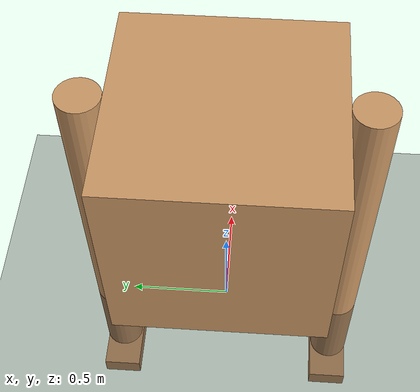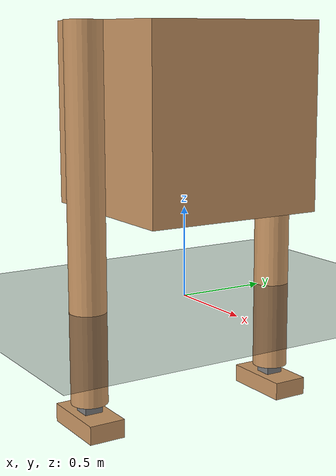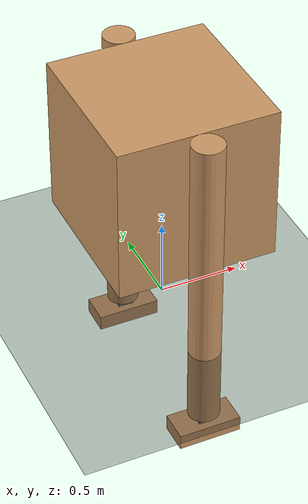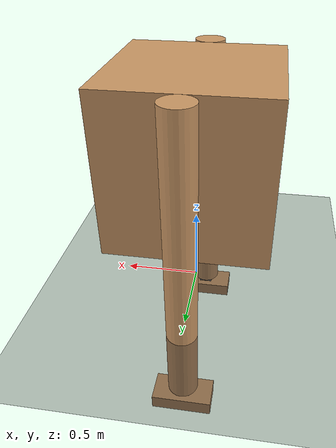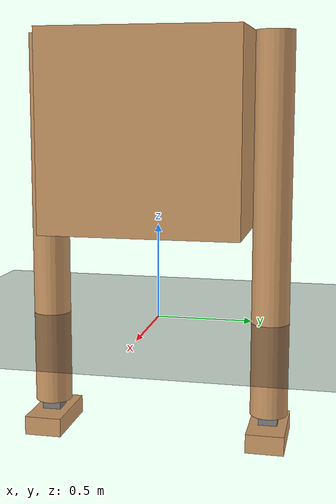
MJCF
<mujoco model="ed_209 scene">

  <include file="ed_209.xml"/>

  <statistic center="0 0 .75" extent="1.2" meansize="0.05"/>

  <visual>
    <headlight diffuse="0.6 0.6 0.6" ambient="0.3 0.3 0.3" specular="0 0 0"/>
    <rgba haze="0.15 0.25 0.35 1"/>
    <global azimuth="-120" elevation="-20"/>
  </visual>

  <asset>
    <material name="floor" rgba=".1 .1 .1 1" reflectance="0.1"/>
  </asset>

  <worldbody>
    <light pos="0 0 1.5" dir="0 0 -1" directional="true"/>
    <geom name="floor" size="0 0 0.05" type="plane" material="floor"/>
  </worldbody>

</mujoco>

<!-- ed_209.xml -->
<mujoco model="ed_209">
  <default class="lift">
    <joint type="slide" axis="0 0 1" damping="5" range="-0.5 .6"/>
    <general ctrlrange="-0.5 .6" gainprm="300" biasprm="0 -300 -50" forcerange="-56 56"/>
  </default>
  <worldbody>
    <!-- Torso -->
    <body name="torso" pos="0 0 1">
      <freejoint/>
      <geom type="box" size="0.5 0.5 0.5" rgba="0.8 0.6 0.4 1"/>
        <!-- Leg -->
      <body name="rleg" pos="0 -0.6 -0.5">
        <joint name="rleg_slide" type="slide" axis="0 0 1" pos="0 0 0"/>
        <geom type="cylinder" size="0.1 1" rgba="0.8 0.6 0.4 1"/>
        <!-- Slide joint connecting torso to leg -->
        <!-- Foot -->
        <body name="rankle" pos="0 0 -1">
          <geom type="box" size="0.05 0.05 0.05"/>
          <body name="rfoot" pos="0 0 -0.1">
            <joint name="rpitch" type="hinge" axis="1 0 0" pos="0 0 0"/>
            <joint name="rroll" type="hinge" axis="0 1 0" pos="0 0 0"/>
            <geom type="box" size="0.2 0.1 0.05" rgba="0.8 0.6 0.4 1"/>
          </body>
        </body>
      </body>
      <body name="lleg" pos="0 +0.6 -0.5">
        <joint name="lleg_slide" type="slide" axis="0 0 1" pos="0 0 0"/>
        <geom type="cylinder" size="0.1 1" rgba="0.8 0.6 0.4 1"/>
        <!-- Slide joint connecting torso to leg -->
        <!-- Foot -->
        <body name="lankle" pos="0 0 -1">
          <geom type="box" size="0.05 0.05 0.05"/>
          <body name="foot" pos="0 0 -0.1">
            <joint name="lpitch" type="hinge" axis="1 0 0" pos="0 0 0"/>
            <joint name="lroll" type="hinge" axis="0 1 0" pos="0 0 0"/>
            <geom type="box" size="0.2 0.1 0.05" rgba="0.8 0.6 0.4 1"/>
          </body>
        </body>
      </body>
    </body>
  </worldbody>
  <actuator>
      <!-- Actuators for the joints -->
      <motor name="rmotor_pitch" joint="rpitch" gear="100"/>
      <motor name="rmotor_roll" joint="rroll" gear="100"/>
      <motor name="lmotor_pitch" joint="lpitch" gear="100"/>
      <motor name="lmotor_roll" joint="lroll" gear="100"/>
      <motor name="rmotor_slide" joint="rleg_slide" gear="100"/>
      <motor name="lmotor_slide" joint="lleg_slide" gear="100"/>
  </actuator>
</mujoco>
